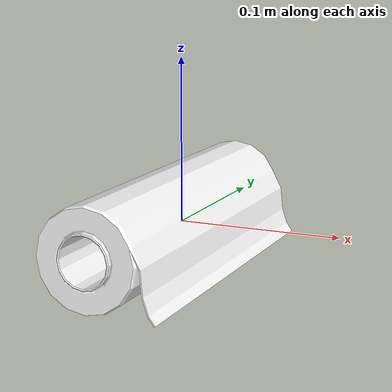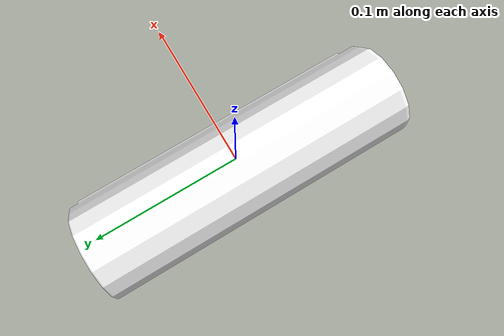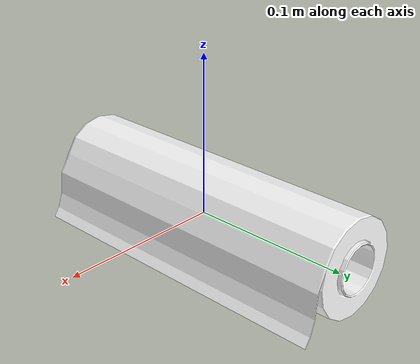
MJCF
<mujoco model="Paper_Towel_1">
  <default>
    <default class="visual">
      <geom group="2" type="mesh" contype="0" conaffinity="0"/>
    </default>
    <default class="collision">
      <geom group="3" type="mesh"/>
    </default>
  </default>
  <asset>
    <material name="Paper_Towel_Mat" specular="0.5" shininess="0.5" rgba="1 1 1 1.0"/>
    <mesh file="Paper_Towel_1.obj"/>
    <mesh file="Paper_Towel_1_collision_0.obj"/>
    <mesh file="Paper_Towel_1_collision_1.obj"/>
    <mesh file="Paper_Towel_1_collision_2.obj"/>
    <mesh file="Paper_Towel_1_collision_3.obj"/>
    <mesh file="Paper_Towel_1_collision_4.obj"/>
    <mesh file="Paper_Towel_1_collision_5.obj"/>
  </asset>
  <worldbody>
    <body name="Paper_Towel_1">
      <geom material="Paper_Towel_Mat" mesh="Paper_Towel_1" class="visual"/>
      <geom mesh="Paper_Towel_1_collision_0" rgba="0.3122415354897181 0.7177700874029895 0.2000099487156144 1" class="collision"/>
      <geom mesh="Paper_Towel_1_collision_1" rgba="0.1902077773599643 0.020195337160173632 0.6917276932745329 1" class="collision"/>
      <geom mesh="Paper_Towel_1_collision_2" rgba="0.5988177913226921 0.9368479790874492 0.8464404698960682 1" class="collision"/>
      <geom mesh="Paper_Towel_1_collision_3" rgba="0.48655377443603887 0.25850712283239075 0.9754802293896024 1" class="collision"/>
      <geom mesh="Paper_Towel_1_collision_4" rgba="0.09135442998831 0.16930800940327695 0.5102405868385507 1" class="collision"/>
      <geom mesh="Paper_Towel_1_collision_5" rgba="0.4713310570675524 0.020400412583910343 0.24178743368877953 1" class="collision"/>
    </body>
  </worldbody>
</mujoco>
